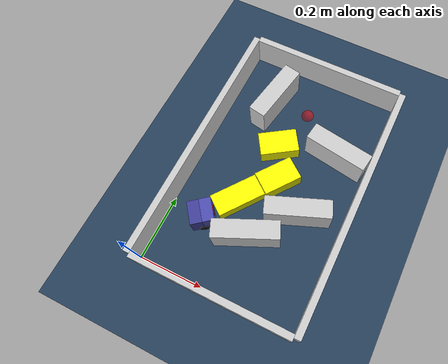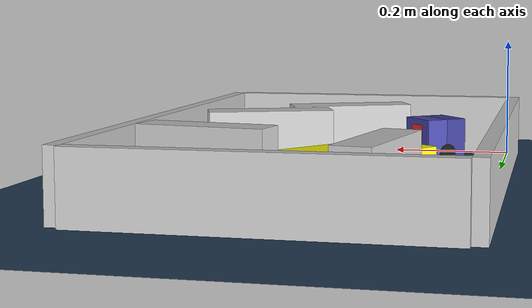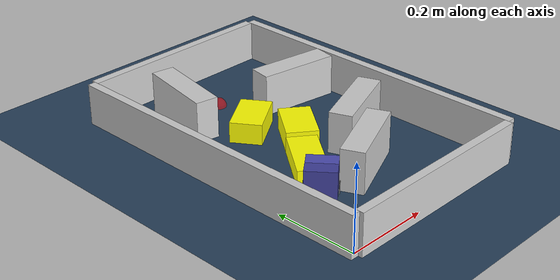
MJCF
<?xml version='1.0' encoding='utf-8'?>
<mujoco model="real_buildable">
  <compiler angle="degree" />
  <option timestep="0.002" integrator="implicitfast" iterations="100" cone="elliptic" />
  <default>
    <geom density="1" />
  </default>
  <asset>
    <texture builtin="gradient" height="3072" rgb1="0.3 0.5 0.7" rgb2="0 0 0" type="skybox" width="512" />
    <texture builtin="checker" height="300" mark="edge" markrgb="0.8 0.8 0.8" name="groundplane" rgb1="0.2 0.3 0.4" rgb2="0.1 0.2 0.3" type="2d" width="300" />
    <material name="groundplane" reflectance="0.2" texrepeat="5 5" texture="groundplane" texuniform="true" />
  </asset>
  <worldbody>
    <light dir="0 0 -1" directional="true" pos="0 0 1.5" />
    <geom name="floor" type="plane" condim="4" friction="0.5 0.005 0.001" material="groundplane" size="0 0 0.05" />
    <body name="walls">
      <geom name="wall_boundary_left" type="box" condim="4" friction="1.0 0.005 0.0001" rgba="0.8 0.8 0.8 1" pos="-0.010000 0.387500 0.050000" euler="0 0 0.000000" size="0.010000 0.397500 0.050000" />
      <geom name="wall_boundary_right" type="box" condim="4" friction="1.0 0.005 0.0001" rgba="0.8 0.8 0.8 1" pos="0.500000 0.387500 0.050000" euler="0 0 0.000000" size="0.010000 0.397500 0.050000" />
      <geom name="wall_boundary_bottom" type="box" condim="4" friction="1.0 0.005 0.0001" rgba="0.8 0.8 0.8 1" pos="0.245000 -0.010000 0.050000" euler="0 0 0.000000" size="0.245000 0.010000 0.050000" />
      <geom name="wall_boundary_top" type="box" condim="4" friction="1.0 0.005 0.0001" rgba="0.8 0.8 0.8 1" pos="0.245000 0.785000 0.050000" euler="0 0 0.000000" size="0.245000 0.010000 0.050000" />
      <geom name="wall_inner_1" type="box" condim="4" friction="1.0 0.005 0.0001" rgba="0.8 0.8 0.8 1" pos="0.357146 0.307641 0.050000" euler="0 0 21.353707" size="0.097500 0.027500 0.050000" />
      <geom name="wall_inner_2" type="box" condim="4" friction="1.0 0.005 0.0001" rgba="0.8 0.8 0.8 1" pos="0.251814 0.186849 0.050000" euler="0 0 23.867859" size="0.097500 0.027500 0.050000" />
      <geom name="wall_inner_3" type="box" condim="4" friction="1.0 0.005 0.0001" rgba="0.8 0.8 0.8 1" pos="0.389000 0.532000 0.050000" euler="0 0 171.200000" size="0.097500 0.027500 0.050000" />
      <geom name="wall_inner_4" type="box" condim="4" friction="1.0 0.005 0.0001" rgba="0.8 0.8 0.8 1" pos="0.131000 0.627000 0.050000" euler="0 0 79.800000" size="0.097500 0.027500 0.050000" />
    </body>
    <body name="car" pos="0.10832790017350856 0.18247565854226699 0.01" quat="0.94393050974814607 0 0 0.33014419995905608">
      <freejoint name="car_freejoint" />
      <inertial pos="0 0 0.0375" mass="0.35" diaginertia="0.000266 0.000266 0.000286" />
      <geom name="front_chassis_collision" type="box" pos="0.0175 0 0.0375" size="0.0175 0.035 0.0325" rgba="0.3 0.3 0.7 1" />
      <geom name="rear_chassis_collision" type="box" pos="-0.0175 0 0.0375" size="0.0175 0.035 0.0325" rgba="0.25 0.25 0.6 1" />
      <geom name="front_marker" type="box" pos="0.034 0 0.0505" size="0.002 0.015 0.01" rgba="1 0.2 0.2 1" contype="0" conaffinity="0" />
      <body name="rear_support_body" pos="-0.03 0 0.0025">
        <joint name="rear_caster_joint" type="ball" damping="0.0001" />
        <inertial pos="0 0 0" mass="0.025" diaginertia="0.000001 0.000001 0.000001" />
        <geom name="rear_support" type="sphere" pos="0 0 0" size="0.0025" friction="0 0 0" rgba="0.7 0.1 0.1 1" />
      </body>
      <body name="front_support_body" pos="0.03 0 0.0025">
        <joint name="front_caster_joint" type="ball" damping="0.0001" />
        <inertial pos="0 0 0" mass="0.025" diaginertia="0.000001 0.000001 0.000001" />
        <geom name="front_support" type="sphere" pos="0 0 0" size="0.0025" friction="0 0 0" rgba="0.1 0.7 0.1 1" />
      </body>
      <body name="left_wheel" pos="0 0.0375 0.015">
        <inertial pos="0 0 0" mass="0.05" diaginertia="0.000003 0.000006 0.000003" />
        <joint name="left_wheel_joint" type="hinge" axis="0 1 0" damping="0.01" armature="0.0001" />
        <geom name="left_wheel_collision" type="cylinder" size="0.015 0.0005" euler="90 0 0" rgba="0.1 0.1 0.1 1" />
      </body>
      <body name="right_wheel" pos="0 -0.0375 0.015">
        <inertial pos="0 0 0" mass="0.05" diaginertia="0.000003 0.000006 0.000003" />
        <joint name="right_wheel_joint" type="hinge" axis="0 1 0" damping="0.01" armature="0.0001" />
        <geom name="right_wheel_collision" type="cylinder" size="0.015 0.0005" euler="90 0 0" rgba="0.1 0.1 0.1 1" />
      </body>
    </body>
    <body name="obstacle_0_movable">
      <geom name="obstacle_0_movable" condim="4" pos="0.17255814451288007 0.28158029406489538 0.02" friction="1 0.005 0.0001" rgba="1 1 0 1" size="0.035000 0.075000 0.020000" type="box" mass="0.1" quat="0.31816015278618398 0 0 0.94803698091322997" />
      <joint type="free" />
    </body>
    <body name="obstacle_1_movable">
      <geom name="obstacle_1_movable" condim="4" pos="0.20900000000000016 0.48999999999999944 0.025000000000000001" friction="1 0.005 0.0001" rgba="1 1 0 1" size="0.037500 0.060000 0.025000" type="box" mass="0.1" quat="0.88006329829113195 0 0 -0.47485638987059453" />
      <joint type="free" />
    </body>
    <body name="obstacle_2_movable">
      <geom name="obstacle_2_movable" condim="4" pos="0.25639593151413526 0.38751314211989324 0.025000000000000001" friction="1 0.005 0.0001" rgba="1 1 0 1" size="0.037500 0.060000 0.025000" type="box" mass="0.1" quat="0.31824834782112149 0 0 0.9480073781934012" />
      <joint type="free" />
    </body>
    <site name="goal" type="sphere" pos="0.245000 0.640000 0.0" size="0.02" rgba="1 0 0 0.5" />
  </worldbody>
  <actuator>
    <velocity name="left_wheel_drive" joint="left_wheel_joint" ctrlrange="-25 25" kv="0.75" forcerange="-0.5 0.5" />
    <velocity name="right_wheel_drive" joint="right_wheel_joint" ctrlrange="-25 25" kv="0.75" forcerange="-0.5 0.5" />
  </actuator>
</mujoco>
